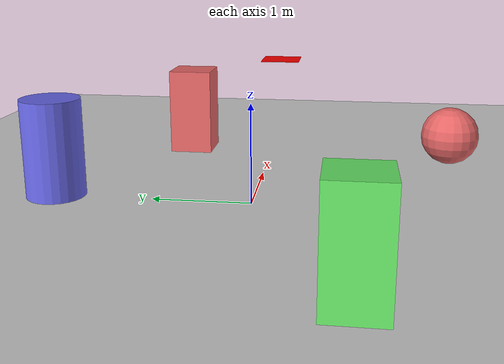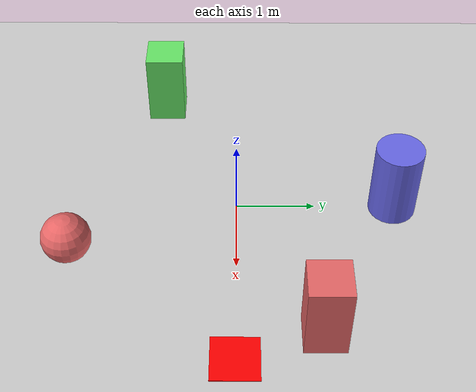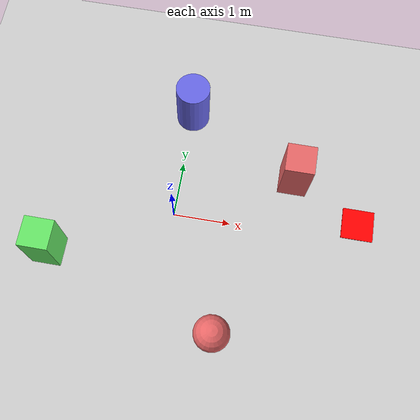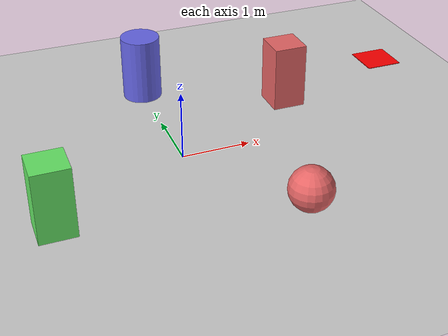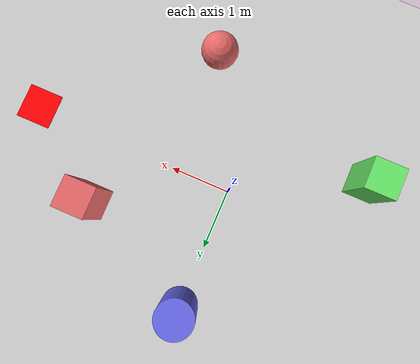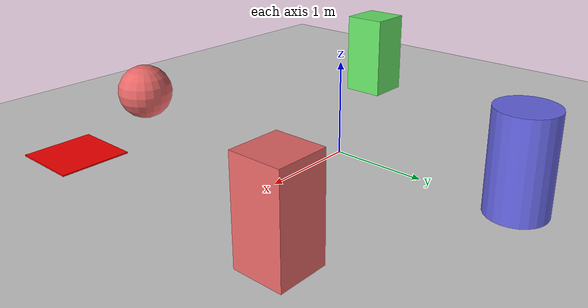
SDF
<?xml version="1.0" ?>
<sdf version="1.6">
  <world name="sensor_world">
    <!-- Include ground plane -->
    <include>
      <uri>model://ground_plane</uri>
    </include>

    <!-- Include sun -->
    <include>
      <uri>model://sun</uri>
    </include>

    <!-- Box obstacle 1 -->
    <model name="box1">
      <pose>2 1 0.5 0 0 0</pose>
      <link name="link">
        <collision name="collision">
          <geometry>
            <box>
              <size>0.5 0.5 1</size>
            </box>
          </geometry>
        </collision>
        <visual name="visual">
          <geometry>
            <box>
              <size>0.5 0.5 1</size>
            </box>
          </geometry>
          <material>
            <ambient>0.8 0.3 0.3 1</ambient>
            <diffuse>0.9 0.4 0.4 1</diffuse>
            <specular>0.2 0.2 0.2 1</specular>
          </material>
        </visual>
        <inertial>
          <mass>1.0</mass>
          <inertia>
            <ixx>0.083333</ixx>
            <ixy>0</ixy>
            <ixz>0</ixz>
            <iyy>0.083333</iyy>
            <iyz>0</iyz>
            <izz>0.041667</izz>
          </inertia>
        </inertial>
      </link>
    </model>

    <!-- Box obstacle 2 -->
    <model name="box2">
      <pose>-2 -1 0.5 0 0 0</pose>
      <link name="link">
        <collision name="collision">
          <geometry>
            <box>
              <size>0.5 0.5 1</size>
            </box>
          </geometry>
        </collision>
        <visual name="visual">
          <geometry>
            <box>
              <size>0.5 0.5 1</size>
            </box>
          </geometry>
          <material>
            <ambient>0.3 0.8 0.3 1</ambient>
            <diffuse>0.4 0.9 0.4 1</diffuse>
            <specular>0.2 0.2 0.2 1</specular>
          </material>
        </visual>
        <inertial>
          <mass>1.0</mass>
          <inertia>
            <ixx>0.083333</ixx>
            <ixy>0</ixy>
            <ixz>0</ixz>
            <iyy>0.083333</iyy>
            <iyz>0</iyz>
            <izz>0.041667</izz>
          </inertia>
        </inertial>
      </link>
    </model>

    <!-- Cylinder obstacle -->
    <model name="cylinder">
      <pose>0 2 0.5 0 0 0</pose>
      <link name="link">
        <collision name="collision">
          <geometry>
            <cylinder>
              <radius>0.3</radius>
              <length>1.0</length>
            </cylinder>
          </geometry>
        </collision>
        <visual name="visual">
          <geometry>
            <cylinder>
              <radius>0.3</radius>
              <length>1.0</length>
            </cylinder>
          </geometry>
          <material>
            <ambient>0.3 0.3 0.8 1</ambient>
            <diffuse>0.4 0.4 0.9 1</diffuse>
            <specular>0.2 0.2 0.2 1</specular>
          </material>
        </visual>
        <inertial>
          <mass>1.0</mass>
          <inertia>
            <ixx>0.1625</ixx>
            <ixy>0</ixy>
            <ixz>0</ixz>
            <iyy>0.1625</iyy>
            <iyz>0</iyz>
            <izz>0.045</izz>
          </inertia>
        </inertial>
      </link>
    </model>

    <!-- Red sphere obstacle -->
    <model name="sphere">
      <pose>1 -2 0.5 0 0 0</pose>
      <link name="link">
        <collision name="collision">
          <geometry>
            <sphere>
              <radius>0.3</radius>
            </sphere>
          </geometry>
        </collision>
        <visual name="visual">
          <geometry>
            <sphere>
              <radius>0.3</radius>
            </sphere>
          </geometry>
          <material>
            <ambient>0.8 0.3 0.3 1</ambient>
            <diffuse>0.9 0.4 0.4 1</diffuse>
            <specular>0.2 0.2 0.2 1</specular>
          </material>
        </visual>
        <inertial>
          <mass>1.0</mass>
          <inertia>
            <ixx>0.072</ixx>
            <ixy>0</ixy>
            <ixz>0</ixz>
            <iyy>0.072</iyy>
            <iyz>0</iyz>
            <izz>0.072</izz>
          </inertia>
        </inertial>
      </link>
    </model>

    <!-- Sign model to test camera detection -->
    <model name="red_sign">
      <pose>3 0 1 0 0 0</pose>
      <link name="link">
        <collision name="collision">
          <geometry>
            <box>
              <size>0.5 0.5 0.01</size>
            </box>
          </geometry>
        </collision>
        <visual name="visual">
          <geometry>
            <box>
              <size>0.5 0.5 0.01</size>
            </box>
          </geometry>
          <material>
            <ambient>0.8 0.0 0.0 1</ambient>
            <diffuse>1.0 0.0 0.0 1</diffuse>
            <specular>0.2 0.2 0.2 1</specular>
          </material>
        </visual>
        <inertial>
          <mass>0.1</mass>
          <inertia>
            <ixx>0.004167</ixx>
            <ixy>0</ixy>
            <ixz>0</ixz>
            <iyy>0.004167</iyy>
            <iyz>0</iyz>
            <izz>0.008333</izz>
          </inertia>
        </inertial>
      </link>
    </model>

  </world>
</sdf>
